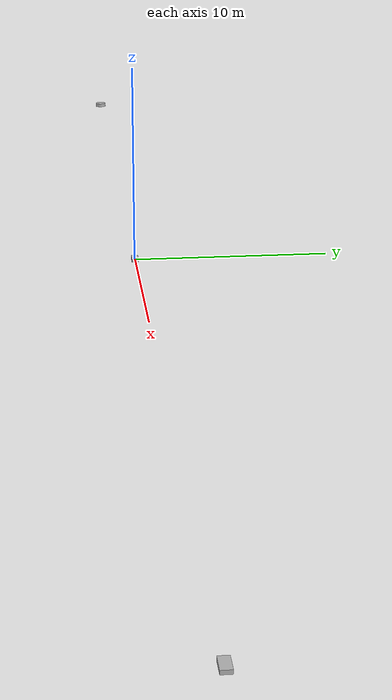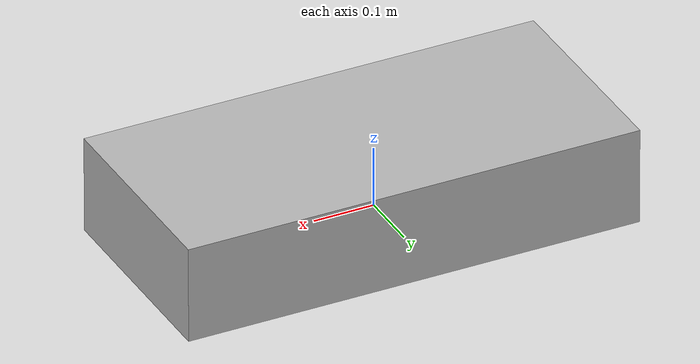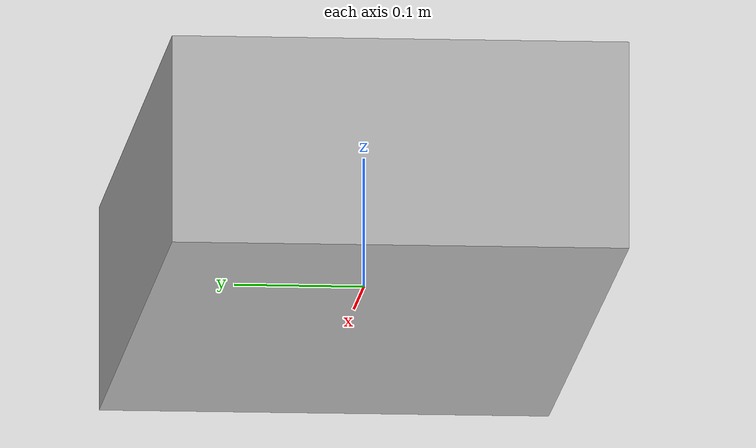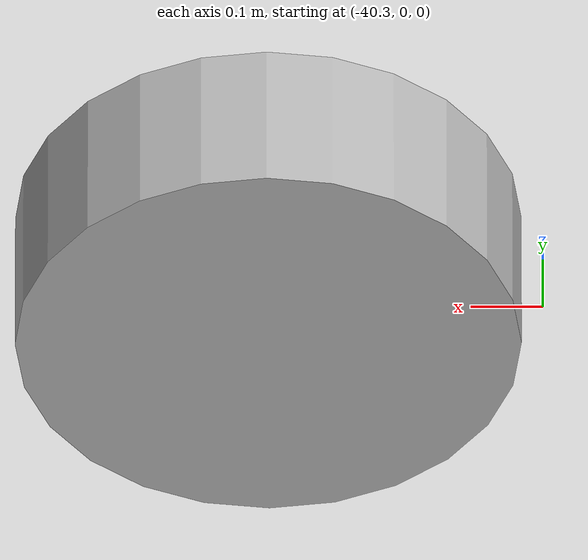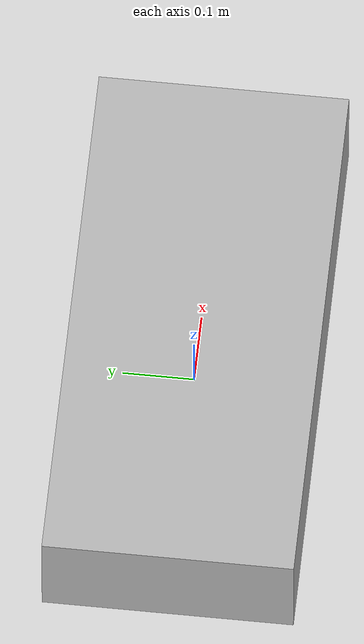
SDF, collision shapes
<?xml version="1.0"?>
<!-- A set of animal buoys -->
<sdf version="1.6">
  <model name="animal_buoys">

    <include>
      <name>crocodile_buoy</name>
      <pose>40 0 0 0 0 0</pose>
      <uri>model://crocodile_buoy</uri>
    </include>

    <include>
      <name>platypus_buoy</name>
      <pose>0 0 0 0 0 0</pose>
      <uri>model://platypus_buoy</uri>
    </include>

    <include>
      <name>turtle_buoy</name>
      <pose>-40 0 0 0 0 0</pose>
      <uri>model://turtle_buoy</uri>
    </include>

  </model>
</sdf>

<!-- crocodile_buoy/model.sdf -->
<sdf version="1.6">
  <model name="crocodile_buoy">
    <link name="link">
      <inertial>
        <pose>0 0 -2 0 0 0</pose>
        <!-- Mass determined based on buoyancy geometry so object
             floats at mid-point of sphere -->
        <mass>20</mass>
        <!-- Mark only - based on cylinder -->
        <inertia>
          <ixx>1.0</ixx>
          <ixy>0</ixy>
          <ixz>0</ixz>
          <iyy>1.0</iyy>
          <iyz>0</iyz>
          <izz>0.1</izz>
        </inertia>
      </inertial>
      <collision name="crocodile_collision">
        <pose>0 0 0.06 0 0 0</pose>
        <geometry>
          <box>
            <size>0.80 0.40 0.15</size>
          </box>
        </geometry>
      </collision>
      <visual name="crocodile_visual">
        <geometry>
	        <mesh><uri>model://crocodile_buoy/meshes/crocodile.dae</uri></mesh>
        </geometry>
      </visual>
    </link>
    <plugin name="CrocodrileBuoyancyPlugin" filename="libbuoyancy_gazebo_plugin.so">
      <wave_model>ocean_waves</wave_model>
      <fluid_density>1000</fluid_density>
      <fluid_level>0.0</fluid_level>
      <linear_drag>25.0</linear_drag>
      <angular_drag>2.0</angular_drag>
      <buoyancy name="buoyancy_sphere">
        <link_name>link</link_name>
        <pose>0 0 0.2 0 0 0</pose>
        <geometry>
          <sphere>
            <radius>0.325</radius>
          </sphere>
        </geometry>
      </buoyancy>
    </plugin>
    <plugin name="CrocodrileFollowPlugin" filename="libfollow_plugin.so">
      <link_name>link</link_name>
      <loop_forever>true</loop_forever>
      <waypoints>
        <waypoint>554 -172</waypoint>
        <waypoint>552 -168</waypoint>
      </waypoints>
    </plugin>
  </model>
</sdf>

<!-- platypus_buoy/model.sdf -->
<sdf version="1.6">
  <model name="platypus_buoy">
    <link name="link">
      <inertial>
        <pose>0 0 -2 0 0 0</pose>
        <!-- Mass determined based on buoyancy geometry so object
             floats at mid-point of sphere -->
        <mass>20</mass>
        <!-- Mark only - based on cylinder -->
        <inertia>
          <ixx>1.0</ixx>
          <ixy>0</ixy>
          <ixz>0</ixz>
          <iyy>1.0</iyy>
          <iyz>0</iyz>
          <izz>0.1</izz>
        </inertia>
      </inertial>
      <collision name="platypus_collision">
        <pose>0.02 0 0.05 0 0 0</pose>
        <geometry>
          <box>
            <size>0.75 0.35 0.16</size>
          </box>
        </geometry>
      </collision>
      <visual name="platypus_visual">
        <geometry>
	        <mesh><uri>model://platypus_buoy/meshes/platypus.dae</uri></mesh>
        </geometry>
      </visual>
    </link>
    <plugin name="PlatypusBuoyancyPlugin" filename="libbuoyancy_gazebo_plugin.so">
      <wave_model>ocean_waves</wave_model>
      <fluid_density>1000</fluid_density>
      <fluid_level>0.0</fluid_level>
      <linear_drag>25.0</linear_drag>
      <angular_drag>2.0</angular_drag>
      <buoyancy name="buoyancy_sphere">
        <link_name>link</link_name>
        <pose>0 0 0.2 0 0 0</pose>
        <geometry>
          <sphere>
            <radius>0.325</radius>
          </sphere>
        </geometry>
      </buoyancy>
    </plugin>
    <plugin name="PlatypusFollowPlugin" filename="libfollow_plugin.so">
      <link_name>link</link_name>
      <loop_forever>true</loop_forever>
      <waypoints>
        <waypoint>-514 172</waypoint>
        <waypoint>-512 168</waypoint>
      </waypoints>
    </plugin>
  </model>
</sdf>

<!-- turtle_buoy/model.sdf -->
<sdf version="1.6">
  <model name="turtle_buoy">
    <link name="link">
      <inertial>
        <pose>0 0 -2 0 0 0</pose>
        <!-- Mass determined based on buoyancy geometry so object
             floats at mid-point of sphere -->
        <mass>20</mass>
        <!-- Mark only - based on cylinder -->
        <inertia>
          <ixx>1.0</ixx>
          <ixy>0</ixy>
          <ixz>0</ixz>
          <iyy>1.0</iyy>
          <iyz>0</iyz>
          <izz>0.1</izz>
        </inertia>
      </inertial>
      <collision name="turtle_collision">
        <pose>0.08 0 0.05 0 0 0</pose>
        <geometry>
          <cylinder>
            <radius>0.35</radius>
            <length>0.23</length>
          </cylinder>
        </geometry>
      </collision>
      <visual name="turtle_visual">
        <geometry>
	        <mesh><uri>model://turtle_buoy/meshes/turtle.dae</uri></mesh>
        </geometry>
      </visual>
    </link>
    <plugin name="TurtleBuoyancyPlugin" filename="libbuoyancy_gazebo_plugin.so">
      <wave_model>ocean_waves</wave_model>
      <fluid_density>1000</fluid_density>
      <fluid_level>0.0</fluid_level>
      <linear_drag>25.0</linear_drag>
      <angular_drag>2.0</angular_drag>
      <buoyancy name="buoyancy_sphere">
        <link_name>link</link_name>
        <pose>0 0 0.2 0 0 0</pose>
        <geometry>
          <sphere>
            <radius>0.325</radius>
          </sphere>
        </geometry>
      </buoyancy>
    </plugin>
    <plugin name="TurtleFollowPlugin" filename="libfollow_plugin.so">
      <link_name>link</link_name>
      <loop_forever>true</loop_forever>
      <waypoints>
        <waypoint>-474 172</waypoint>
        <waypoint>-472 168</waypoint>
      </waypoints>
    </plugin>
  </model>
</sdf>
